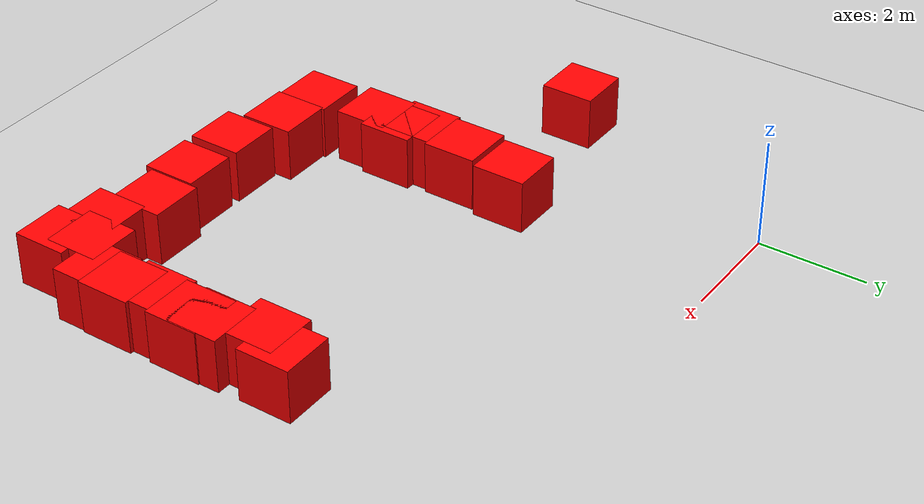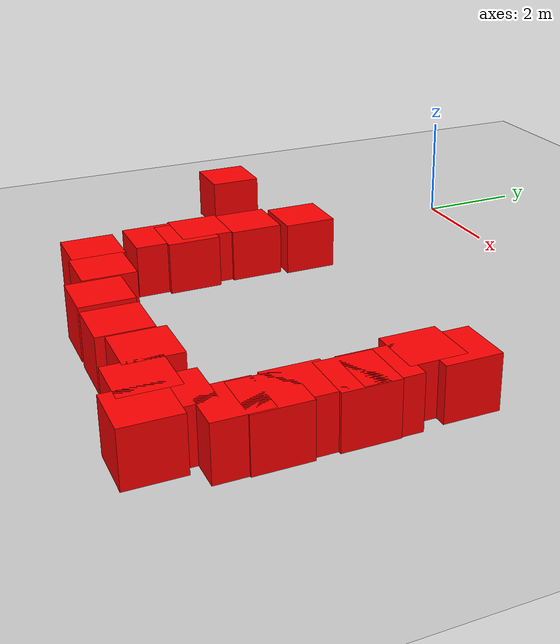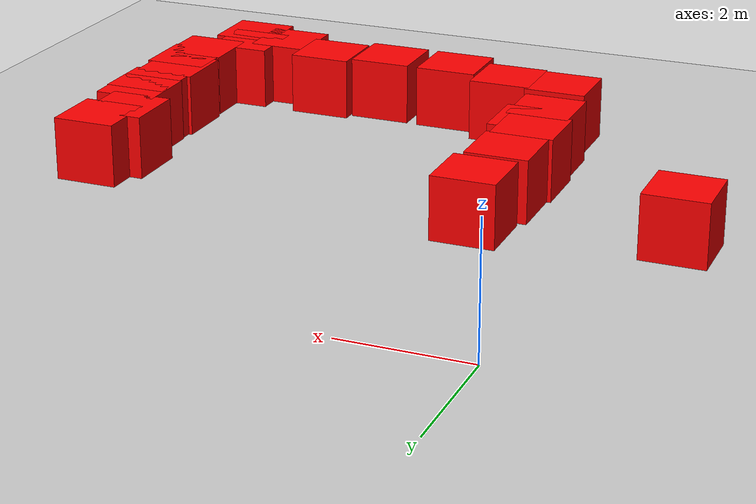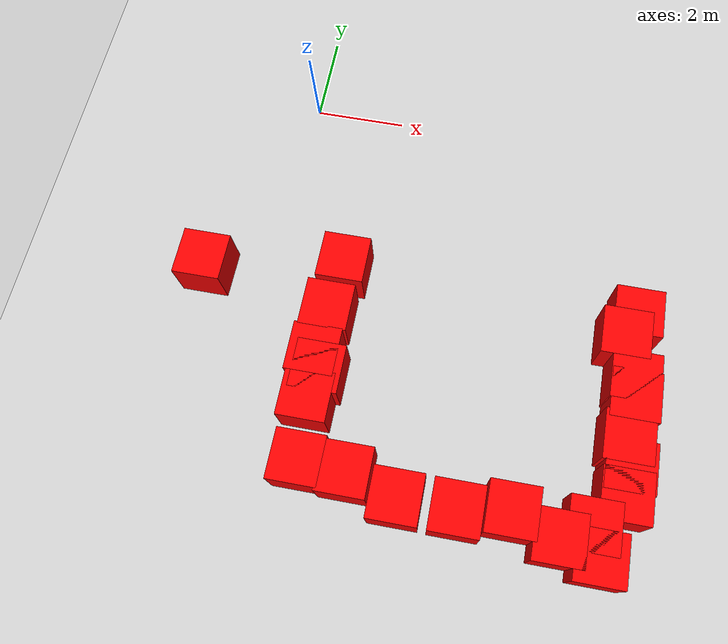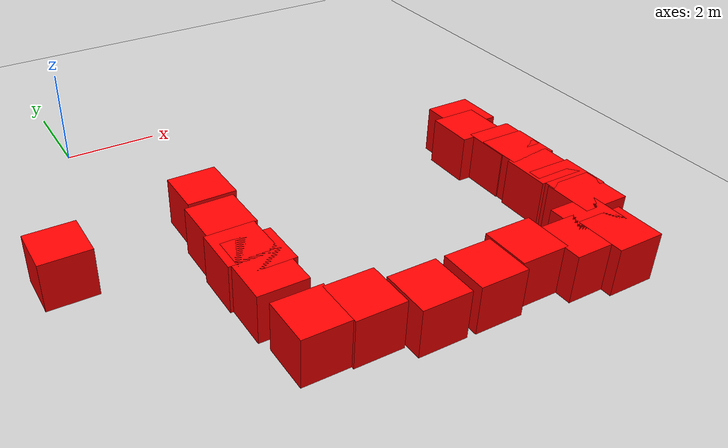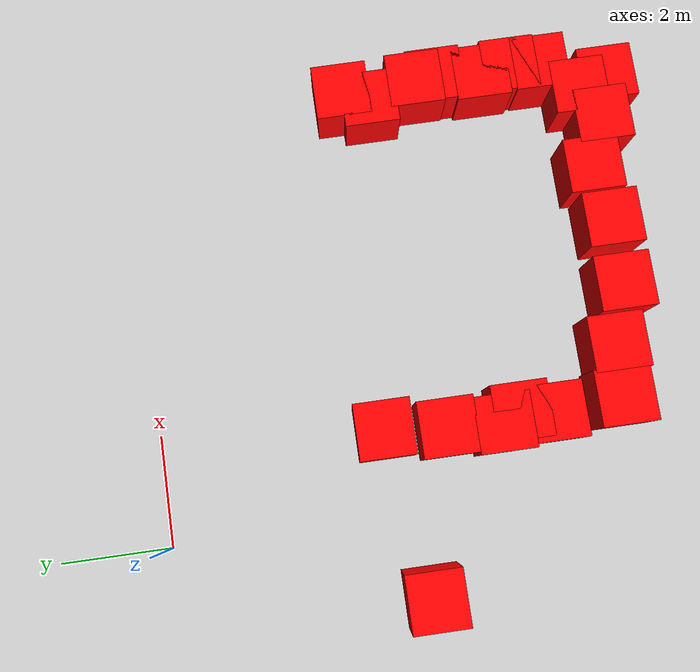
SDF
<sdf version="1.7">
 <world name="default">
  <model name="ground_plane">
   <static>1</static>
   <link name="link">
    <collision name="collision">
     <geometry><plane><normal>0 0 1</normal><size>100 100</size></plane></geometry>
     <surface><friction><ode><mu>100</mu><mu2>50</mu2></ode></friction></surface>
    </collision>
    <visual name="visual">
     <cast_shadows>0</cast_shadows>
     <geometry><plane><normal>0 0 1</normal><size>100 100</size></plane></geometry>
     <material>
      <script><uri>file://media/materials/scripts/gazebo.material</uri><name>Gazebo/Grey</name></script>
     </material>
    </visual>
   </link>
  </model>
  <model name="unit_box_clone_clone_9">
   <link name="link">
    <inertial>
     <mass>1</mass>
     <inertia>
      <ixx>0.166667</ixx>
      <ixy>0</ixy>
      <ixz>0</ixz>
      <iyy>0.166667</iyy>
      <iyz>0</iyz>
      <izz>0.166667</izz>
     </inertia>
    </inertial>
    <visual name="visual">
     <geometry><box><size>1 1 1</size></box></geometry>
     <material>
      <script><name>Gazebo/Grey</name><uri>file://media/materials/scripts/gazebo.material</uri></script>
      <shader type="pixel"><normal_map>__default__</normal_map></shader>
      <ambient>1 0 0 0</ambient>
      <diffuse>0.7 0.7 0.7 1</diffuse>
      <specular>0.01 0.01 0.01 1</specular>
      <emissive>0 0 0 1</emissive>
     </material>
    </visual>
    <collision name="collision">
     <geometry><box><size>1 1 1</size></box></geometry>
     <surface>
      <friction>
       <ode><mu>1</mu><mu2>1</mu2><fdir1>0 0 0</fdir1><slip1>0</slip1><slip2>0</slip2></ode>
       <torsional>
        <coefficient>1</coefficient>
        <patch_radius>0</patch_radius>
        <surface_radius>0</surface_radius>
        <use_patch_radius>1</use_patch_radius>
        <ode><slip>0</slip></ode>
       </torsional>
      </friction>
      <bounce><restitution_coefficient>0</restitution_coefficient><threshold>1e+06</threshold></bounce>
      <contact>
       <collide_without_contact>0</collide_without_contact>
       <collide_without_contact_bitmask>1</collide_without_contact_bitmask>
       <collide_bitmask>1</collide_bitmask>
       <ode>
        <soft_cfm>0</soft_cfm>
        <soft_erp>0.2</soft_erp>
        <kp>1e+13</kp>
        <kd>1</kd>
        <max_vel>0.01</max_vel>
        <min_depth>0</min_depth>
       </ode>
       <bullet>
        <split_impulse>1</split_impulse>
        <split_impulse_penetration_threshold>-0.01</split_impulse_penetration_threshold>
        <soft_cfm>0</soft_cfm>
        <soft_erp>0.2</soft_erp>
        <kp>1e+13</kp>
        <kd>1</kd>
       </bullet>
      </contact>
     </surface>
    </collision>
   </link>
   <static>0</static>
   <pose>1.41007 -5.09495 0.5 0 -0 0</pose>
  </model>
  <model name="unit_box_clone_clone_10">
   <link name="link">
    <inertial>
     <mass>1</mass>
     <inertia>
      <ixx>0.166667</ixx>
      <ixy>0</ixy>
      <ixz>0</ixz>
      <iyy>0.166667</iyy>
      <iyz>0</iyz>
      <izz>0.166667</izz>
     </inertia>
    </inertial>
    <visual name="visual">
     <geometry><box><size>1 1 1</size></box></geometry>
     <material>
      <script><name>Gazebo/Grey</name><uri>file://media/materials/scripts/gazebo.material</uri></script>
      <shader type="pixel"><normal_map>__default__</normal_map></shader>
      <ambient>1 0 0 0</ambient>
      <diffuse>0.7 0.7 0.7 1</diffuse>
      <specular>0.01 0.01 0.01 1</specular>
      <emissive>0 0 0 1</emissive>
     </material>
    </visual>
    <collision name="collision">
     <geometry><box><size>1 1 1</size></box></geometry>
     <surface>
      <friction>
       <ode><mu>1</mu><mu2>1</mu2><fdir1>0 0 0</fdir1><slip1>0</slip1><slip2>0</slip2></ode>
       <torsional>
        <coefficient>1</coefficient>
        <patch_radius>0</patch_radius>
        <surface_radius>0</surface_radius>
        <use_patch_radius>1</use_patch_radius>
        <ode><slip>0</slip></ode>
       </torsional>
      </friction>
      <bounce><restitution_coefficient>0</restitution_coefficient><threshold>1e+06</threshold></bounce>
      <contact>
       <collide_without_contact>0</collide_without_contact>
       <collide_without_contact_bitmask>1</collide_without_contact_bitmask>
       <collide_bitmask>1</collide_bitmask>
       <ode>
        <soft_cfm>0</soft_cfm>
        <soft_erp>0.2</soft_erp>
        <kp>1e+13</kp>
        <kd>1</kd>
        <max_vel>0.01</max_vel>
        <min_depth>0</min_depth>
       </ode>
       <bullet>
        <split_impulse>1</split_impulse>
        <split_impulse_penetration_threshold>-0.01</split_impulse_penetration_threshold>
        <soft_cfm>0</soft_cfm>
        <soft_erp>0.2</soft_erp>
        <kp>1e+13</kp>
        <kd>1</kd>
       </bullet>
      </contact>
     </surface>
    </collision>
   </link>
   <static>0</static>
   <pose>1.40868 -7 0.5 0 -0 0</pose>
  </model>
  <model name="unit_box_clone_clone_81">
   <link name="link">
    <inertial>
     <mass>1</mass>
     <inertia>
      <ixx>0.166667</ixx>
      <ixy>0</ixy>
      <ixz>0</ixz>
      <iyy>0.166667</iyy>
      <iyz>0</iyz>
      <izz>0.166667</izz>
     </inertia>
    </inertial>
    <visual name="visual">
     <geometry><box><size>1 1 1</size></box></geometry>
     <material>
      <script><name>Gazebo/Grey</name><uri>file://media/materials/scripts/gazebo.material</uri></script>
      <shader type="pixel"><normal_map>__default__</normal_map></shader>
      <ambient>1 0 0 0</ambient>
      <diffuse>0.7 0.7 0.7 1</diffuse>
      <specular>0.01 0.01 0.01 1</specular>
      <emissive>0 0 0 1</emissive>
     </material>
    </visual>
    <collision name="collision">
     <geometry><box><size>1 1 1</size></box></geometry>
     <surface>
      <friction>
       <ode><mu>1</mu><mu2>1</mu2><fdir1>0 0 0</fdir1><slip1>0</slip1><slip2>0</slip2></ode>
       <torsional>
        <coefficient>1</coefficient>
        <patch_radius>0</patch_radius>
        <surface_radius>0</surface_radius>
        <use_patch_radius>1</use_patch_radius>
        <ode><slip>0</slip></ode>
       </torsional>
      </friction>
      <bounce><restitution_coefficient>0</restitution_coefficient><threshold>1e+06</threshold></bounce>
      <contact>
       <collide_without_contact>0</collide_without_contact>
       <collide_without_contact_bitmask>1</collide_without_contact_bitmask>
       <collide_bitmask>1</collide_bitmask>
       <ode>
        <soft_cfm>0</soft_cfm>
        <soft_erp>0.2</soft_erp>
        <kp>1e+13</kp>
        <kd>1</kd>
        <max_vel>0.01</max_vel>
        <min_depth>0</min_depth>
       </ode>
       <bullet>
        <split_impulse>1</split_impulse>
        <split_impulse_penetration_threshold>-0.01</split_impulse_penetration_threshold>
        <soft_cfm>0</soft_cfm>
        <soft_erp>0.2</soft_erp>
        <kp>1e+13</kp>
        <kd>1</kd>
       </bullet>
      </contact>
     </surface>
    </collision>
   </link>
   <static>0</static>
   <pose>-1.42914 -4.46103 0.5 0 -0 0</pose>
  </model>
  <model name="unit_box_clone_clone_82">
   <link name="link">
    <inertial>
     <mass>1</mass>
     <inertia>
      <ixx>0.166667</ixx>
      <ixy>0</ixy>
      <ixz>0</ixz>
      <iyy>0.166667</iyy>
      <iyz>0</iyz>
      <izz>0.166667</izz>
     </inertia>
    </inertial>
    <visual name="visual">
     <geometry><box><size>1 1 1</size></box></geometry>
     <material>
      <script><name>Gazebo/Grey</name><uri>file://media/materials/scripts/gazebo.material</uri></script>
      <shader type="pixel"><normal_map>__default__</normal_map></shader>
      <ambient>1 0 0 0</ambient>
      <diffuse>0.7 0.7 0.7 1</diffuse>
      <specular>0.01 0.01 0.01 1</specular>
      <emissive>0 0 0 1</emissive>
     </material>
    </visual>
    <collision name="collision">
     <geometry><box><size>1 1 1</size></box></geometry>
     <surface>
      <friction>
       <ode><mu>1</mu><mu2>1</mu2><fdir1>0 0 0</fdir1><slip1>0</slip1><slip2>0</slip2></ode>
       <torsional>
        <coefficient>1</coefficient>
        <patch_radius>0</patch_radius>
        <surface_radius>0</surface_radius>
        <use_patch_radius>1</use_patch_radius>
        <ode><slip>0</slip></ode>
       </torsional>
      </friction>
      <bounce><restitution_coefficient>0</restitution_coefficient><threshold>1e+06</threshold></bounce>
      <contact>
       <collide_without_contact>0</collide_without_contact>
       <collide_without_contact_bitmask>1</collide_without_contact_bitmask>
       <collide_bitmask>1</collide_bitmask>
       <ode>
        <soft_cfm>0</soft_cfm>
        <soft_erp>0.2</soft_erp>
        <kp>1e+13</kp>
        <kd>1</kd>
        <max_vel>0.01</max_vel>
        <min_depth>0</min_depth>
       </ode>
       <bullet>
        <split_impulse>1</split_impulse>
        <split_impulse_penetration_threshold>-0.01</split_impulse_penetration_threshold>
        <soft_cfm>0</soft_cfm>
        <soft_erp>0.2</soft_erp>
        <kp>1e+13</kp>
        <kd>1</kd>
       </bullet>
      </contact>
     </surface>
    </collision>
   </link>
   <static>0</static>
   <pose>1.50849 -6.40166 0.5 0 -0 0</pose>
  </model>
  <model name="unit_box_clone_clone_83">
   <link name="link">
    <inertial>
     <mass>1</mass>
     <inertia>
      <ixx>0.166667</ixx>
      <ixy>0</ixy>
      <ixz>0</ixz>
      <iyy>0.166667</iyy>
      <iyz>0</iyz>
      <izz>0.166667</izz>
     </inertia>
    </inertial>
    <visual name="visual">
     <geometry><box><size>1 1 1</size></box></geometry>
     <material>
      <script><name>Gazebo/Grey</name><uri>file://media/materials/scripts/gazebo.material</uri></script>
      <shader type="pixel"><normal_map>__default__</normal_map></shader>
      <ambient>1 0 0 0</ambient>
      <diffuse>0.7 0.7 0.7 1</diffuse>
      <specular>0.01 0.01 0.01 1</specular>
      <emissive>0 0 0 1</emissive>
     </material>
    </visual>
    <collision name="collision">
     <geometry><box><size>1 1 1</size></box></geometry>
     <surface>
      <friction>
       <ode><mu>1</mu><mu2>1</mu2><fdir1>0 0 0</fdir1><slip1>0</slip1><slip2>0</slip2></ode>
       <torsional>
        <coefficient>1</coefficient>
        <patch_radius>0</patch_radius>
        <surface_radius>0</surface_radius>
        <use_patch_radius>1</use_patch_radius>
        <ode><slip>0</slip></ode>
       </torsional>
      </friction>
      <bounce><restitution_coefficient>0</restitution_coefficient><threshold>1e+06</threshold></bounce>
      <contact>
       <collide_without_contact>0</collide_without_contact>
       <collide_without_contact_bitmask>1</collide_without_contact_bitmask>
       <collide_bitmask>1</collide_bitmask>
       <ode>
        <soft_cfm>0</soft_cfm>
        <soft_erp>0.2</soft_erp>
        <kp>1e+13</kp>
        <kd>1</kd>
        <max_vel>0.01</max_vel>
        <min_depth>0</min_depth>
       </ode>
       <bullet>
        <split_impulse>1</split_impulse>
        <split_impulse_penetration_threshold>-0.01</split_impulse_penetration_threshold>
        <soft_cfm>0</soft_cfm>
        <soft_erp>0.2</soft_erp>
        <kp>1e+13</kp>
        <kd>1</kd>
       </bullet>
      </contact>
     </surface>
    </collision>
   </link>
   <static>0</static>
   <pose>1.52381 -4 0.5 0 -0 0</pose>
  </model>
  <model name="unit_box_clone_clone_84">
   <link name="link">
    <inertial>
     <mass>1</mass>
     <inertia>
      <ixx>0.166667</ixx>
      <ixy>0</ixy>
      <ixz>0</ixz>
      <iyy>0.166667</iyy>
      <iyz>0</iyz>
      <izz>0.166667</izz>
     </inertia>
    </inertial>
    <visual name="visual">
     <geometry><box><size>1 1 1</size></box></geometry>
     <material>
      <script><name>Gazebo/Grey</name><uri>file://media/materials/scripts/gazebo.material</uri></script>
      <shader type="pixel"><normal_map>__default__</normal_map></shader>
      <ambient>1 0 0 0</ambient>
      <diffuse>0.7 0.7 0.7 1</diffuse>
      <specular>0.01 0.01 0.01 1</specular>
      <emissive>0 0 0 1</emissive>
     </material>
    </visual>
    <collision name="collision">
     <geometry><box><size>1 1 1</size></box></geometry>
     <surface>
      <friction>
       <ode><mu>1</mu><mu2>1</mu2><fdir1>0 0 0</fdir1><slip1>0</slip1><slip2>0</slip2></ode>
       <torsional>
        <coefficient>1</coefficient>
        <patch_radius>0</patch_radius>
        <surface_radius>0</surface_radius>
        <use_patch_radius>1</use_patch_radius>
        <ode><slip>0</slip></ode>
       </torsional>
      </friction>
      <bounce><restitution_coefficient>0</restitution_coefficient><threshold>1e+06</threshold></bounce>
      <contact>
       <collide_without_contact>0</collide_without_contact>
       <collide_without_contact_bitmask>1</collide_without_contact_bitmask>
       <collide_bitmask>1</collide_bitmask>
       <ode>
        <soft_cfm>0</soft_cfm>
        <soft_erp>0.2</soft_erp>
        <kp>1e+13</kp>
        <kd>1</kd>
        <max_vel>0.01</max_vel>
        <min_depth>0</min_depth>
       </ode>
       <bullet>
        <split_impulse>1</split_impulse>
        <split_impulse_penetration_threshold>-0.01</split_impulse_penetration_threshold>
        <soft_cfm>0</soft_cfm>
        <soft_erp>0.2</soft_erp>
        <kp>1e+13</kp>
        <kd>1</kd>
       </bullet>
      </contact>
     </surface>
    </collision>
   </link>
   <static>0</static>
   <pose>1.34942 -6.07125 0.5 0 -0 0</pose>
  </model>
  <model name="unit_box_clone_clone_85">
   <link name="link">
    <inertial>
     <mass>1</mass>
     <inertia>
      <ixx>0.166667</ixx>
      <ixy>0</ixy>
      <ixz>0</ixz>
      <iyy>0.166667</iyy>
      <iyz>0</iyz>
      <izz>0.166667</izz>
     </inertia>
    </inertial>
    <visual name="visual">
     <geometry><box><size>1 1 1</size></box></geometry>
     <material>
      <script><name>Gazebo/Grey</name><uri>file://media/materials/scripts/gazebo.material</uri></script>
      <shader type="pixel"><normal_map>__default__</normal_map></shader>
      <ambient>1 0 0 0</ambient>
      <diffuse>0.7 0.7 0.7 1</diffuse>
      <specular>0.01 0.01 0.01 1</specular>
      <emissive>0 0 0 1</emissive>
     </material>
    </visual>
    <collision name="collision">
     <geometry><box><size>1 1 1</size></box></geometry>
     <surface>
      <friction>
       <ode><mu>1</mu><mu2>1</mu2><fdir1>0 0 0</fdir1><slip1>0</slip1><slip2>0</slip2></ode>
       <torsional>
        <coefficient>1</coefficient>
        <patch_radius>0</patch_radius>
        <surface_radius>0</surface_radius>
        <use_patch_radius>1</use_patch_radius>
        <ode><slip>0</slip></ode>
       </torsional>
      </friction>
      <bounce><restitution_coefficient>0</restitution_coefficient><threshold>1e+06</threshold></bounce>
      <contact>
       <collide_without_contact>0</collide_without_contact>
       <collide_without_contact_bitmask>1</collide_without_contact_bitmask>
       <collide_bitmask>1</collide_bitmask>
       <ode>
        <soft_cfm>0</soft_cfm>
        <soft_erp>0.2</soft_erp>
        <kp>1e+13</kp>
        <kd>1</kd>
        <max_vel>0.01</max_vel>
        <min_depth>0</min_depth>
       </ode>
       <bullet>
        <split_impulse>1</split_impulse>
        <split_impulse_penetration_threshold>-0.01</split_impulse_penetration_threshold>
        <soft_cfm>0</soft_cfm>
        <soft_erp>0.2</soft_erp>
        <kp>1e+13</kp>
        <kd>1</kd>
       </bullet>
      </contact>
     </surface>
    </collision>
   </link>
   <static>0</static>
   <pose>1.51548 -8.22684 0.5 0 -0 0</pose>
  </model>
  <model name="unit_box_clone_clone_86">
   <link name="link">
    <inertial>
     <mass>1</mass>
     <inertia>
      <ixx>0.166667</ixx>
      <ixy>0</ixy>
      <ixz>0</ixz>
      <iyy>0.166667</iyy>
      <iyz>0</iyz>
      <izz>0.166667</izz>
     </inertia>
    </inertial>
    <visual name="visual">
     <geometry><box><size>1 1 1</size></box></geometry>
     <material>
      <script><name>Gazebo/Grey</name><uri>file://media/materials/scripts/gazebo.material</uri></script>
      <shader type="pixel"><normal_map>__default__</normal_map></shader>
      <ambient>1 0 0 0</ambient>
      <diffuse>0.7 0.7 0.7 1</diffuse>
      <specular>0.01 0.01 0.01 1</specular>
      <emissive>0 0 0 1</emissive>
     </material>
    </visual>
    <collision name="collision">
     <geometry><box><size>1 1 1</size></box></geometry>
     <surface>
      <friction>
       <ode><mu>1</mu><mu2>1</mu2><fdir1>0 0 0</fdir1><slip1>0</slip1><slip2>0</slip2></ode>
       <torsional>
        <coefficient>1</coefficient>
        <patch_radius>0</patch_radius>
        <surface_radius>0</surface_radius>
        <use_patch_radius>1</use_patch_radius>
        <ode><slip>0</slip></ode>
       </torsional>
      </friction>
      <bounce><restitution_coefficient>0</restitution_coefficient><threshold>1e+06</threshold></bounce>
      <contact>
       <collide_without_contact>0</collide_without_contact>
       <collide_without_contact_bitmask>1</collide_without_contact_bitmask>
       <collide_bitmask>1</collide_bitmask>
       <ode>
        <soft_cfm>0</soft_cfm>
        <soft_erp>0.2</soft_erp>
        <kp>1e+13</kp>
        <kd>1</kd>
        <max_vel>0.01</max_vel>
        <min_depth>0</min_depth>
       </ode>
       <bullet>
        <split_impulse>1</split_impulse>
        <split_impulse_penetration_threshold>-0.01</split_impulse_penetration_threshold>
        <soft_cfm>0</soft_cfm>
        <soft_erp>0.2</soft_erp>
        <kp>1e+13</kp>
        <kd>1</kd>
       </bullet>
      </contact>
     </surface>
    </collision>
   </link>
   <static>0</static>
   <pose>2.46352 -8.28052 0.5 0 -0 0</pose>
  </model>
  <model name="unit_box_clone_clone_87">
   <link name="link">
    <inertial>
     <mass>1</mass>
     <inertia>
      <ixx>0.166667</ixx>
      <ixy>0</ixy>
      <ixz>0</ixz>
      <iyy>0.166667</iyy>
      <iyz>0</iyz>
      <izz>0.166667</izz>
     </inertia>
    </inertial>
    <visual name="visual">
     <geometry><box><size>1 1 1</size></box></geometry>
     <material>
      <script><name>Gazebo/Grey</name><uri>file://media/materials/scripts/gazebo.material</uri></script>
      <shader type="pixel"><normal_map>__default__</normal_map></shader>
      <ambient>1 0 0 0</ambient>
      <diffuse>0.7 0.7 0.7 1</diffuse>
      <specular>0.01 0.01 0.01 1</specular>
      <emissive>0 0 0 1</emissive>
     </material>
    </visual>
    <collision name="collision">
     <geometry><box><size>1 1 1</size></box></geometry>
     <surface>
      <friction>
       <ode><mu>1</mu><mu2>1</mu2><fdir1>0 0 0</fdir1><slip1>0</slip1><slip2>0</slip2></ode>
       <torsional>
        <coefficient>1</coefficient>
        <patch_radius>0</patch_radius>
        <surface_radius>0</surface_radius>
        <use_patch_radius>1</use_patch_radius>
        <ode><slip>0</slip></ode>
       </torsional>
      </friction>
      <bounce><restitution_coefficient>0</restitution_coefficient><threshold>1e+06</threshold></bounce>
      <contact>
       <collide_without_contact>0</collide_without_contact>
       <collide_without_contact_bitmask>1</collide_without_contact_bitmask>
       <collide_bitmask>1</collide_bitmask>
       <ode>
        <soft_cfm>0</soft_cfm>
        <soft_erp>0.2</soft_erp>
        <kp>1e+13</kp>
        <kd>1</kd>
        <max_vel>0.01</max_vel>
        <min_depth>0</min_depth>
       </ode>
       <bullet>
        <split_impulse>1</split_impulse>
        <split_impulse_penetration_threshold>-0.01</split_impulse_penetration_threshold>
        <soft_cfm>0</soft_cfm>
        <soft_erp>0.2</soft_erp>
        <kp>1e+13</kp>
        <kd>1</kd>
       </bullet>
      </contact>
     </surface>
    </collision>
   </link>
   <static>0</static>
   <pose>3.51255 -8.59519 0.5 0 -0 0</pose>
  </model>
  <model name="unit_box_clone_clone_88">
   <link name="link">
    <inertial>
     <mass>1</mass>
     <inertia>
      <ixx>0.166667</ixx>
      <ixy>0</ixy>
      <ixz>0</ixz>
      <iyy>0.166667</iyy>
      <iyz>0</iyz>
      <izz>0.166667</izz>
     </inertia>
    </inertial>
    <visual name="visual">
     <geometry><box><size>1 1 1</size></box></geometry>
     <material>
      <script><name>Gazebo/Grey</name><uri>file://media/materials/scripts/gazebo.material</uri></script>
      <shader type="pixel"><normal_map>__default__</normal_map></shader>
      <ambient>1 0 0 0</ambient>
      <diffuse>0.7 0.7 0.7 1</diffuse>
      <specular>0.01 0.01 0.01 1</specular>
      <emissive>0 0 0 1</emissive>
     </material>
    </visual>
    <collision name="collision">
     <geometry><box><size>1 1 1</size></box></geometry>
     <surface>
      <friction>
       <ode><mu>1</mu><mu2>1</mu2><fdir1>0 0 0</fdir1><slip1>0</slip1><slip2>0</slip2></ode>
       <torsional>
        <coefficient>1</coefficient>
        <patch_radius>0</patch_radius>
        <surface_radius>0</surface_radius>
        <use_patch_radius>1</use_patch_radius>
        <ode><slip>0</slip></ode>
       </torsional>
      </friction>
      <bounce><restitution_coefficient>0</restitution_coefficient><threshold>1e+06</threshold></bounce>
      <contact>
       <collide_without_contact>0</collide_without_contact>
       <collide_without_contact_bitmask>1</collide_without_contact_bitmask>
       <collide_bitmask>1</collide_bitmask>
       <ode>
        <soft_cfm>0</soft_cfm>
        <soft_erp>0.2</soft_erp>
        <kp>1e+13</kp>
        <kd>1</kd>
        <max_vel>0.01</max_vel>
        <min_depth>0</min_depth>
       </ode>
       <bullet>
        <split_impulse>1</split_impulse>
        <split_impulse_penetration_threshold>-0.01</split_impulse_penetration_threshold>
        <soft_cfm>0</soft_cfm>
        <soft_erp>0.2</soft_erp>
        <kp>1e+13</kp>
        <kd>1</kd>
       </bullet>
      </contact>
     </surface>
    </collision>
   </link>
   <static>0</static>
   <pose>4.68722 -8.60651 0.5 0 -0 0</pose>
  </model>
  <model name="unit_box_clone_clone_89">
   <link name="link">
    <inertial>
     <mass>1</mass>
     <inertia>
      <ixx>0.166667</ixx>
      <ixy>0</ixy>
      <ixz>0</ixz>
      <iyy>0.166667</iyy>
      <iyz>0</iyz>
      <izz>0.166667</izz>
     </inertia>
    </inertial>
    <visual name="visual">
     <geometry><box><size>1 1 1</size></box></geometry>
     <material>
      <script><name>Gazebo/Grey</name><uri>file://media/materials/scripts/gazebo.material</uri></script>
      <shader type="pixel"><normal_map>__default__</normal_map></shader>
      <ambient>1 0 0 0</ambient>
      <diffuse>0.7 0.7 0.7 1</diffuse>
      <specular>0.01 0.01 0.01 1</specular>
      <emissive>0 0 0 1</emissive>
     </material>
    </visual>
    <collision name="collision">
     <geometry><box><size>1 1 1</size></box></geometry>
     <surface>
      <friction>
       <ode><mu>1</mu><mu2>1</mu2><fdir1>0 0 0</fdir1><slip1>0</slip1><slip2>0</slip2></ode>
       <torsional>
        <coefficient>1</coefficient>
        <patch_radius>0</patch_radius>
        <surface_radius>0</surface_radius>
        <use_patch_radius>1</use_patch_radius>
        <ode><slip>0</slip></ode>
       </torsional>
      </friction>
      <bounce><restitution_coefficient>0</restitution_coefficient><threshold>1e+06</threshold></bounce>
      <contact>
       <collide_without_contact>0</collide_without_contact>
       <collide_without_contact_bitmask>1</collide_without_contact_bitmask>
       <collide_bitmask>1</collide_bitmask>
       <ode>
        <soft_cfm>0</soft_cfm>
        <soft_erp>0.2</soft_erp>
        <kp>1e+13</kp>
        <kd>1</kd>
        <max_vel>0.01</max_vel>
        <min_depth>0</min_depth>
       </ode>
       <bullet>
        <split_impulse>1</split_impulse>
        <split_impulse_penetration_threshold>-0.01</split_impulse_penetration_threshold>
        <soft_cfm>0</soft_cfm>
        <soft_erp>0.2</soft_erp>
        <kp>1e+13</kp>
        <kd>1</kd>
       </bullet>
      </contact>
     </surface>
    </collision>
   </link>
   <static>0</static>
   <pose>5.72104 -8.44867 0.5 0 -0 0</pose>
  </model>
  <model name="unit_box_clone_clone_90">
   <link name="link">
    <inertial>
     <mass>1</mass>
     <inertia>
      <ixx>0.166667</ixx>
      <ixy>0</ixy>
      <ixz>0</ixz>
      <iyy>0.166667</iyy>
      <iyz>0</iyz>
      <izz>0.166667</izz>
     </inertia>
    </inertial>
    <visual name="visual">
     <geometry><box><size>1 1 1</size></box></geometry>
     <material>
      <script><name>Gazebo/Grey</name><uri>file://media/materials/scripts/gazebo.material</uri></script>
      <shader type="pixel"><normal_map>__default__</normal_map></shader>
      <ambient>1 0 0 0</ambient>
      <diffuse>0.7 0.7 0.7 1</diffuse>
      <specular>0.01 0.01 0.01 1</specular>
      <emissive>0 0 0 1</emissive>
     </material>
    </visual>
    <collision name="collision">
     <geometry><box><size>1 1 1</size></box></geometry>
     <surface>
      <friction>
       <ode><mu>1</mu><mu2>1</mu2><fdir1>0 0 0</fdir1><slip1>0</slip1><slip2>0</slip2></ode>
       <torsional>
        <coefficient>1</coefficient>
        <patch_radius>0</patch_radius>
        <surface_radius>0</surface_radius>
        <use_patch_radius>1</use_patch_radius>
        <ode><slip>0</slip></ode>
       </torsional>
      </friction>
      <bounce><restitution_coefficient>0</restitution_coefficient><threshold>1e+06</threshold></bounce>
      <contact>
       <collide_without_contact>0</collide_without_contact>
       <collide_without_contact_bitmask>1</collide_without_contact_bitmask>
       <collide_bitmask>1</collide_bitmask>
       <ode>
        <soft_cfm>0</soft_cfm>
        <soft_erp>0.2</soft_erp>
        <kp>1e+13</kp>
        <kd>1</kd>
        <max_vel>0.01</max_vel>
        <min_depth>0</min_depth>
       </ode>
       <bullet>
        <split_impulse>1</split_impulse>
        <split_impulse_penetration_threshold>-0.01</split_impulse_penetration_threshold>
        <soft_cfm>0</soft_cfm>
        <soft_erp>0.2</soft_erp>
        <kp>1e+13</kp>
        <kd>1</kd>
       </bullet>
      </contact>
     </surface>
    </collision>
   </link>
   <static>0</static>
   <pose>7.41271 -9 0.5 0 -0 0</pose>
  </model>
  <model name="unit_box_clone_clone_91">
   <link name="link">
    <inertial>
     <mass>1</mass>
     <inertia>
      <ixx>0.166667</ixx>
      <ixy>0</ixy>
      <ixz>0</ixz>
      <iyy>0.166667</iyy>
      <iyz>0</iyz>
      <izz>0.166667</izz>
     </inertia>
    </inertial>
    <visual name="visual">
     <geometry><box><size>1 1 1</size></box></geometry>
     <material>
      <script><name>Gazebo/Grey</name><uri>file://media/materials/scripts/gazebo.material</uri></script>
      <shader type="pixel"><normal_map>__default__</normal_map></shader>
      <ambient>1 0 0 0</ambient>
      <diffuse>0.7 0.7 0.7 1</diffuse>
      <specular>0.01 0.01 0.01 1</specular>
      <emissive>0 0 0 1</emissive>
     </material>
    </visual>
    <collision name="collision">
     <geometry><box><size>1 1 1</size></box></geometry>
     <surface>
      <friction>
       <ode><mu>1</mu><mu2>1</mu2><fdir1>0 0 0</fdir1><slip1>0</slip1><slip2>0</slip2></ode>
       <torsional>
        <coefficient>1</coefficient>
        <patch_radius>0</patch_radius>
        <surface_radius>0</surface_radius>
        <use_patch_radius>1</use_patch_radius>
        <ode><slip>0</slip></ode>
       </torsional>
      </friction>
      <bounce><restitution_coefficient>0</restitution_coefficient><threshold>1e+06</threshold></bounce>
      <contact>
       <collide_without_contact>0</collide_without_contact>
       <collide_without_contact_bitmask>1</collide_without_contact_bitmask>
       <collide_bitmask>1</collide_bitmask>
       <ode>
        <soft_cfm>0</soft_cfm>
        <soft_erp>0.2</soft_erp>
        <kp>1e+13</kp>
        <kd>1</kd>
        <max_vel>0.01</max_vel>
        <min_depth>0</min_depth>
       </ode>
       <bullet>
        <split_impulse>1</split_impulse>
        <split_impulse_penetration_threshold>-0.01</split_impulse_penetration_threshold>
        <soft_cfm>0</soft_cfm>
        <soft_erp>0.2</soft_erp>
        <kp>1e+13</kp>
        <kd>1</kd>
       </bullet>
      </contact>
     </surface>
    </collision>
   </link>
   <static>0</static>
   <pose>7.24614 -8.46005 0.5 0 -0 0</pose>
  </model>
  <model name="unit_box_clone_clone_92">
   <link name="link">
    <inertial>
     <mass>1</mass>
     <inertia>
      <ixx>0.166667</ixx>
      <ixy>0</ixy>
      <ixz>0</ixz>
      <iyy>0.166667</iyy>
      <iyz>0</iyz>
      <izz>0.166667</izz>
     </inertia>
    </inertial>
    <visual name="visual">
     <geometry><box><size>1 1 1</size></box></geometry>
     <material>
      <script><name>Gazebo/Grey</name><uri>file://media/materials/scripts/gazebo.material</uri></script>
      <shader type="pixel"><normal_map>__default__</normal_map></shader>
      <ambient>1 0 0 0</ambient>
      <diffuse>0.7 0.7 0.7 1</diffuse>
      <specular>0.01 0.01 0.01 1</specular>
      <emissive>0 0 0 1</emissive>
     </material>
    </visual>
    <collision name="collision">
     <geometry><box><size>1 1 1</size></box></geometry>
     <surface>
      <friction>
       <ode><mu>1</mu><mu2>1</mu2><fdir1>0 0 0</fdir1><slip1>0</slip1><slip2>0</slip2></ode>
       <torsional>
        <coefficient>1</coefficient>
        <patch_radius>0</patch_radius>
        <surface_radius>0</surface_radius>
        <use_patch_radius>1</use_patch_radius>
        <ode><slip>0</slip></ode>
       </torsional>
      </friction>
      <bounce><restitution_coefficient>0</restitution_coefficient><threshold>1e+06</threshold></bounce>
      <contact>
       <collide_without_contact>0</collide_without_contact>
       <collide_without_contact_bitmask>1</collide_without_contact_bitmask>
       <collide_bitmask>1</collide_bitmask>
       <ode>
        <soft_cfm>0</soft_cfm>
        <soft_erp>0.2</soft_erp>
        <kp>1e+13</kp>
        <kd>1</kd>
        <max_vel>0.01</max_vel>
        <min_depth>0</min_depth>
       </ode>
       <bullet>
        <split_impulse>1</split_impulse>
        <split_impulse_penetration_threshold>-0.01</split_impulse_penetration_threshold>
        <soft_cfm>0</soft_cfm>
        <soft_erp>0.2</soft_erp>
        <kp>1e+13</kp>
        <kd>1</kd>
       </bullet>
      </contact>
     </surface>
    </collision>
   </link>
   <static>0</static>
   <pose>6.63986 -8.78244 0.5 0 -0 0</pose>
  </model>
  <model name="unit_box_clone_clone_93">
   <link name="link">
    <inertial>
     <mass>1</mass>
     <inertia>
      <ixx>0.166667</ixx>
      <ixy>0</ixy>
      <ixz>0</ixz>
      <iyy>0.166667</iyy>
      <iyz>0</iyz>
      <izz>0.166667</izz>
     </inertia>
    </inertial>
    <visual name="visual">
     <geometry><box><size>1 1 1</size></box></geometry>
     <material>
      <script><name>Gazebo/Grey</name><uri>file://media/materials/scripts/gazebo.material</uri></script>
      <shader type="pixel"><normal_map>__default__</normal_map></shader>
      <ambient>1 0 0 0</ambient>
      <diffuse>0.7 0.7 0.7 1</diffuse>
      <specular>0.01 0.01 0.01 1</specular>
      <emissive>0 0 0 1</emissive>
     </material>
    </visual>
    <collision name="collision">
     <geometry><box><size>1 1 1</size></box></geometry>
     <surface>
      <friction>
       <ode><mu>1</mu><mu2>1</mu2><fdir1>0 0 0</fdir1><slip1>0</slip1><slip2>0</slip2></ode>
       <torsional>
        <coefficient>1</coefficient>
        <patch_radius>0</patch_radius>
        <surface_radius>0</surface_radius>
        <use_patch_radius>1</use_patch_radius>
        <ode><slip>0</slip></ode>
       </torsional>
      </friction>
      <bounce><restitution_coefficient>0</restitution_coefficient><threshold>1e+06</threshold></bounce>
      <contact>
       <collide_without_contact>0</collide_without_contact>
       <collide_without_contact_bitmask>1</collide_without_contact_bitmask>
       <collide_bitmask>1</collide_bitmask>
       <ode>
        <soft_cfm>0</soft_cfm>
        <soft_erp>0.2</soft_erp>
        <kp>1e+13</kp>
        <kd>1</kd>
        <max_vel>0.01</max_vel>
        <min_depth>0</min_depth>
       </ode>
       <bullet>
        <split_impulse>1</split_impulse>
        <split_impulse_penetration_threshold>-0.01</split_impulse_penetration_threshold>
        <soft_cfm>0</soft_cfm>
        <soft_erp>0.2</soft_erp>
        <kp>1e+13</kp>
        <kd>1</kd>
       </bullet>
      </contact>
     </surface>
    </collision>
   </link>
   <static>0</static>
   <pose>7.79286 -7.81775 0.5 0 -0 0</pose>
  </model>
  <model name="unit_box_clone_clone_94">
   <link name="link">
    <inertial>
     <mass>1</mass>
     <inertia>
      <ixx>0.166667</ixx>
      <ixy>0</ixy>
      <ixz>0</ixz>
      <iyy>0.166667</iyy>
      <iyz>0</iyz>
      <izz>0.166667</izz>
     </inertia>
    </inertial>
    <visual name="visual">
     <geometry><box><size>1 1 1</size></box></geometry>
     <material>
      <script><name>Gazebo/Grey</name><uri>file://media/materials/scripts/gazebo.material</uri></script>
      <shader type="pixel"><normal_map>__default__</normal_map></shader>
      <ambient>1 0 0 0</ambient>
      <diffuse>0.7 0.7 0.7 1</diffuse>
      <specular>0.01 0.01 0.01 1</specular>
      <emissive>0 0 0 1</emissive>
     </material>
    </visual>
    <collision name="collision">
     <geometry><box><size>1 1 1</size></box></geometry>
     <surface>
      <friction>
       <ode><mu>1</mu><mu2>1</mu2><fdir1>0 0 0</fdir1><slip1>0</slip1><slip2>0</slip2></ode>
       <torsional>
        <coefficient>1</coefficient>
        <patch_radius>0</patch_radius>
        <surface_radius>0</surface_radius>
        <use_patch_radius>1</use_patch_radius>
        <ode><slip>0</slip></ode>
       </torsional>
      </friction>
      <bounce><restitution_coefficient>0</restitution_coefficient><threshold>1e+06</threshold></bounce>
      <contact>
       <collide_without_contact>0</collide_without_contact>
       <collide_without_contact_bitmask>1</collide_without_contact_bitmask>
       <collide_bitmask>1</collide_bitmask>
       <ode>
        <soft_cfm>0</soft_cfm>
        <soft_erp>0.2</soft_erp>
        <kp>1e+13</kp>
        <kd>1</kd>
        <max_vel>0.01</max_vel>
        <min_depth>0</min_depth>
       </ode>
       <bullet>
        <split_impulse>1</split_impulse>
        <split_impulse_penetration_threshold>-0.01</split_impulse_penetration_threshold>
        <soft_cfm>0</soft_cfm>
        <soft_erp>0.2</soft_erp>
        <kp>1e+13</kp>
        <kd>1</kd>
       </bullet>
      </contact>
     </surface>
    </collision>
   </link>
   <static>0</static>
   <pose>7.82091 -7.25314 0.5 0 -0 0</pose>
  </model>
  <model name="unit_box_clone_clone_95">
   <link name="link">
    <inertial>
     <mass>1</mass>
     <inertia>
      <ixx>0.166667</ixx>
      <ixy>0</ixy>
      <ixz>0</ixz>
      <iyy>0.166667</iyy>
      <iyz>0</iyz>
      <izz>0.166667</izz>
     </inertia>
    </inertial>
    <visual name="visual">
     <geometry><box><size>1 1 1</size></box></geometry>
     <material>
      <script><name>Gazebo/Grey</name><uri>file://media/materials/scripts/gazebo.material</uri></script>
      <shader type="pixel"><normal_map>__default__</normal_map></shader>
      <ambient>1 0 0 0</ambient>
      <diffuse>0.7 0.7 0.7 1</diffuse>
      <specular>0.01 0.01 0.01 1</specular>
      <emissive>0 0 0 1</emissive>
     </material>
    </visual>
    <collision name="collision">
     <geometry><box><size>1 1 1</size></box></geometry>
     <surface>
      <friction>
       <ode><mu>1</mu><mu2>1</mu2><fdir1>0 0 0</fdir1><slip1>0</slip1><slip2>0</slip2></ode>
       <torsional>
        <coefficient>1</coefficient>
        <patch_radius>0</patch_radius>
        <surface_radius>0</surface_radius>
        <use_patch_radius>1</use_patch_radius>
        <ode><slip>0</slip></ode>
       </torsional>
      </friction>
      <bounce><restitution_coefficient>0</restitution_coefficient><threshold>1e+06</threshold></bounce>
      <contact>
       <collide_without_contact>0</collide_without_contact>
       <collide_without_contact_bitmask>1</collide_without_contact_bitmask>
       <collide_bitmask>1</collide_bitmask>
       <ode>
        <soft_cfm>0</soft_cfm>
        <soft_erp>0.2</soft_erp>
        <kp>1e+13</kp>
        <kd>1</kd>
        <max_vel>0.01</max_vel>
        <min_depth>0</min_depth>
       </ode>
       <bullet>
        <split_impulse>1</split_impulse>
        <split_impulse_penetration_threshold>-0.01</split_impulse_penetration_threshold>
        <soft_cfm>0</soft_cfm>
        <soft_erp>0.2</soft_erp>
        <kp>1e+13</kp>
        <kd>1</kd>
       </bullet>
      </contact>
     </surface>
    </collision>
   </link>
   <static>0</static>
   <pose>7.80971 -5.8627 0.5 0 -0 0</pose>
  </model>
  <model name="unit_box_clone_clone_96">
   <link name="link">
    <inertial>
     <mass>1</mass>
     <inertia>
      <ixx>0.166667</ixx>
      <ixy>0</ixy>
      <ixz>0</ixz>
      <iyy>0.166667</iyy>
      <iyz>0</iyz>
      <izz>0.166667</izz>
     </inertia>
    </inertial>
    <visual name="visual">
     <geometry><box><size>1 1 1</size></box></geometry>
     <material>
      <script><name>Gazebo/Grey</name><uri>file://media/materials/scripts/gazebo.material</uri></script>
      <shader type="pixel"><normal_map>__default__</normal_map></shader>
      <ambient>1 0 0 0</ambient>
      <diffuse>0.7 0.7 0.7 1</diffuse>
      <specular>0.01 0.01 0.01 1</specular>
      <emissive>0 0 0 1</emissive>
     </material>
    </visual>
    <collision name="collision">
     <geometry><box><size>1 1 1</size></box></geometry>
     <surface>
      <friction>
       <ode><mu>1</mu><mu2>1</mu2><fdir1>0 0 0</fdir1><slip1>0</slip1><slip2>0</slip2></ode>
       <torsional>
        <coefficient>1</coefficient>
        <patch_radius>0</patch_radius>
        <surface_radius>0</surface_radius>
        <use_patch_radius>1</use_patch_radius>
        <ode><slip>0</slip></ode>
       </torsional>
      </friction>
      <bounce><restitution_coefficient>0</restitution_coefficient><threshold>1e+06</threshold></bounce>
      <contact>
       <collide_without_contact>0</collide_without_contact>
       <collide_without_contact_bitmask>1</collide_without_contact_bitmask>
       <collide_bitmask>1</collide_bitmask>
       <ode>
        <soft_cfm>0</soft_cfm>
        <soft_erp>0.2</soft_erp>
        <kp>1e+13</kp>
        <kd>1</kd>
        <max_vel>0.01</max_vel>
        <min_depth>0</min_depth>
       </ode>
       <bullet>
        <split_impulse>1</split_impulse>
        <split_impulse_penetration_threshold>-0.01</split_impulse_penetration_threshold>
        <soft_cfm>0</soft_cfm>
        <soft_erp>0.2</soft_erp>
        <kp>1e+13</kp>
        <kd>1</kd>
       </bullet>
      </contact>
     </surface>
    </collision>
   </link>
   <static>0</static>
   <pose>7.5286 -4.6019 0.5 0 -0 0</pose>
  </model>
  <model name="unit_box_clone_clone_97">
   <link name="link">
    <inertial>
     <mass>1</mass>
     <inertia>
      <ixx>0.166667</ixx>
      <ixy>0</ixy>
      <ixz>0</ixz>
      <iyy>0.166667</iyy>
      <iyz>0</iyz>
      <izz>0.166667</izz>
     </inertia>
    </inertial>
    <visual name="visual">
     <geometry><box><size>1 1 1</size></box></geometry>
     <material>
      <script><name>Gazebo/Grey</name><uri>file://media/materials/scripts/gazebo.material</uri></script>
      <shader type="pixel"><normal_map>__default__</normal_map></shader>
      <ambient>1 0 0 0</ambient>
      <diffuse>0.7 0.7 0.7 1</diffuse>
      <specular>0.01 0.01 0.01 1</specular>
      <emissive>0 0 0 1</emissive>
     </material>
    </visual>
    <collision name="collision">
     <geometry><box><size>1 1 1</size></box></geometry>
     <surface>
      <friction>
       <ode><mu>1</mu><mu2>1</mu2><fdir1>0 0 0</fdir1><slip1>0</slip1><slip2>0</slip2></ode>
       <torsional>
        <coefficient>1</coefficient>
        <patch_radius>0</patch_radius>
        <surface_radius>0</surface_radius>
        <use_patch_radius>1</use_patch_radius>
        <ode><slip>0</slip></ode>
       </torsional>
      </friction>
      <bounce><restitution_coefficient>0</restitution_coefficient><threshold>1e+06</threshold></bounce>
      <contact>
       <collide_without_contact>0</collide_without_contact>
       <collide_without_contact_bitmask>1</collide_without_contact_bitmask>
       <collide_bitmask>1</collide_bitmask>
       <ode>
        <soft_cfm>0</soft_cfm>
        <soft_erp>0.2</soft_erp>
        <kp>1e+13</kp>
        <kd>1</kd>
        <max_vel>0.01</max_vel>
        <min_depth>0</min_depth>
       </ode>
       <bullet>
        <split_impulse>1</split_impulse>
        <split_impulse_penetration_threshold>-0.01</split_impulse_penetration_threshold>
        <soft_cfm>0</soft_cfm>
        <soft_erp>0.2</soft_erp>
        <kp>1e+13</kp>
        <kd>1</kd>
       </bullet>
      </contact>
     </surface>
    </collision>
   </link>
   <static>0</static>
   <pose>7.74054 -4.11312 0.5 0 -0 0</pose>
  </model>
  <model name="unit_box_clone_clone_98">
   <link name="link">
    <inertial>
     <mass>1</mass>
     <inertia>
      <ixx>0.166667</ixx>
      <ixy>0</ixy>
      <ixz>0</ixz>
      <iyy>0.166667</iyy>
      <iyz>0</iyz>
      <izz>0.166667</izz>
     </inertia>
    </inertial>
    <visual name="visual">
     <geometry><box><size>1 1 1</size></box></geometry>
     <material>
      <script><name>Gazebo/Grey</name><uri>file://media/materials/scripts/gazebo.material</uri></script>
      <shader type="pixel"><normal_map>__default__</normal_map></shader>
      <ambient>1 0 0 0</ambient>
      <diffuse>0.7 0.7 0.7 1</diffuse>
      <specular>0.01 0.01 0.01 1</specular>
      <emissive>0 0 0 1</emissive>
     </material>
    </visual>
    <collision name="collision">
     <geometry><box><size>1 1 1</size></box></geometry>
     <surface>
      <friction>
       <ode><mu>1</mu><mu2>1</mu2><fdir1>0 0 0</fdir1><slip1>0</slip1><slip2>0</slip2></ode>
       <torsional>
        <coefficient>1</coefficient>
        <patch_radius>0</patch_radius>
        <surface_radius>0</surface_radius>
        <use_patch_radius>1</use_patch_radius>
        <ode><slip>0</slip></ode>
       </torsional>
      </friction>
      <bounce><restitution_coefficient>0</restitution_coefficient><threshold>1e+06</threshold></bounce>
      <contact>
       <collide_without_contact>0</collide_without_contact>
       <collide_without_contact_bitmask>1</collide_without_contact_bitmask>
       <collide_bitmask>1</collide_bitmask>
       <ode>
        <soft_cfm>0</soft_cfm>
        <soft_erp>0.2</soft_erp>
        <kp>1e+13</kp>
        <kd>1</kd>
        <max_vel>0.01</max_vel>
        <min_depth>0</min_depth>
       </ode>
       <bullet>
        <split_impulse>1</split_impulse>
        <split_impulse_penetration_threshold>-0.01</split_impulse_penetration_threshold>
        <soft_cfm>0</soft_cfm>
        <soft_erp>0.2</soft_erp>
        <kp>1e+13</kp>
        <kd>1</kd>
       </bullet>
      </contact>
     </surface>
    </collision>
   </link>
   <static>0</static>
   <pose>7.78693 -5.48102 0.5 0 -0 0</pose>
  </model>
  <model name="unit_box_clone_clone_99">
   <link name="link">
    <inertial>
     <mass>1</mass>
     <inertia>
      <ixx>0.166667</ixx>
      <ixy>0</ixy>
      <ixz>0</ixz>
      <iyy>0.166667</iyy>
      <iyz>0</iyz>
      <izz>0.166667</izz>
     </inertia>
    </inertial>
    <visual name="visual">
     <geometry><box><size>1 1 1</size></box></geometry>
     <material>
      <script><name>Gazebo/Grey</name><uri>file://media/materials/scripts/gazebo.material</uri></script>
      <shader type="pixel"><normal_map>__default__</normal_map></shader>
      <ambient>1 0 0 0</ambient>
      <diffuse>0.7 0.7 0.7 1</diffuse>
      <specular>0.01 0.01 0.01 1</specular>
      <emissive>0 0 0 1</emissive>
     </material>
    </visual>
    <collision name="collision">
     <geometry><box><size>1 1 1</size></box></geometry>
     <surface>
      <friction>
       <ode><mu>1</mu><mu2>1</mu2><fdir1>0 0 0</fdir1><slip1>0</slip1><slip2>0</slip2></ode>
       <torsional>
        <coefficient>1</coefficient>
        <patch_radius>0</patch_radius>
        <surface_radius>0</surface_radius>
        <use_patch_radius>1</use_patch_radius>
        <ode><slip>0</slip></ode>
       </torsional>
      </friction>
      <bounce><restitution_coefficient>0</restitution_coefficient><threshold>1e+06</threshold></bounce>
      <contact>
       <collide_without_contact>0</collide_without_contact>
       <collide_without_contact_bitmask>1</collide_without_contact_bitmask>
       <collide_bitmask>1</collide_bitmask>
       <ode>
        <soft_cfm>0</soft_cfm>
        <soft_erp>0.2</soft_erp>
        <kp>1e+13</kp>
        <kd>1</kd>
        <max_vel>0.01</max_vel>
        <min_depth>0</min_depth>
       </ode>
       <bullet>
        <split_impulse>1</split_impulse>
        <split_impulse_penetration_threshold>-0.01</split_impulse_penetration_threshold>
        <soft_cfm>0</soft_cfm>
        <soft_erp>0.2</soft_erp>
        <kp>1e+13</kp>
        <kd>1</kd>
       </bullet>
      </contact>
     </surface>
    </collision>
   </link>
   <static>0</static>
   <pose>7.75156 -6.71076 0.5 0 -0 0</pose>
  </model>
 </world>
</sdf>
